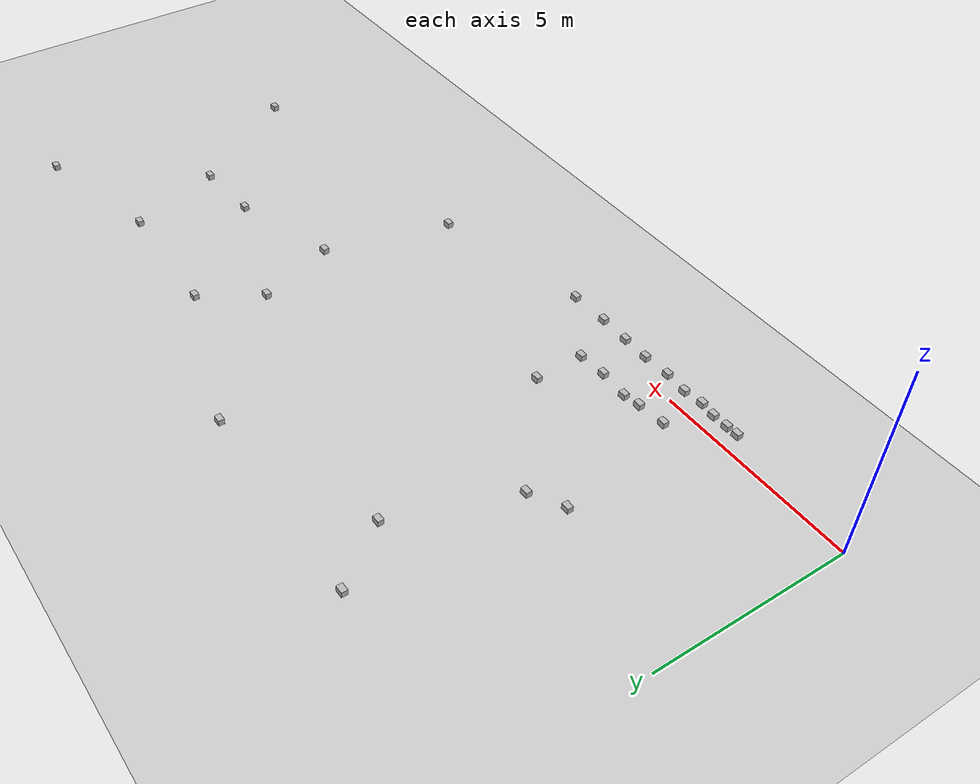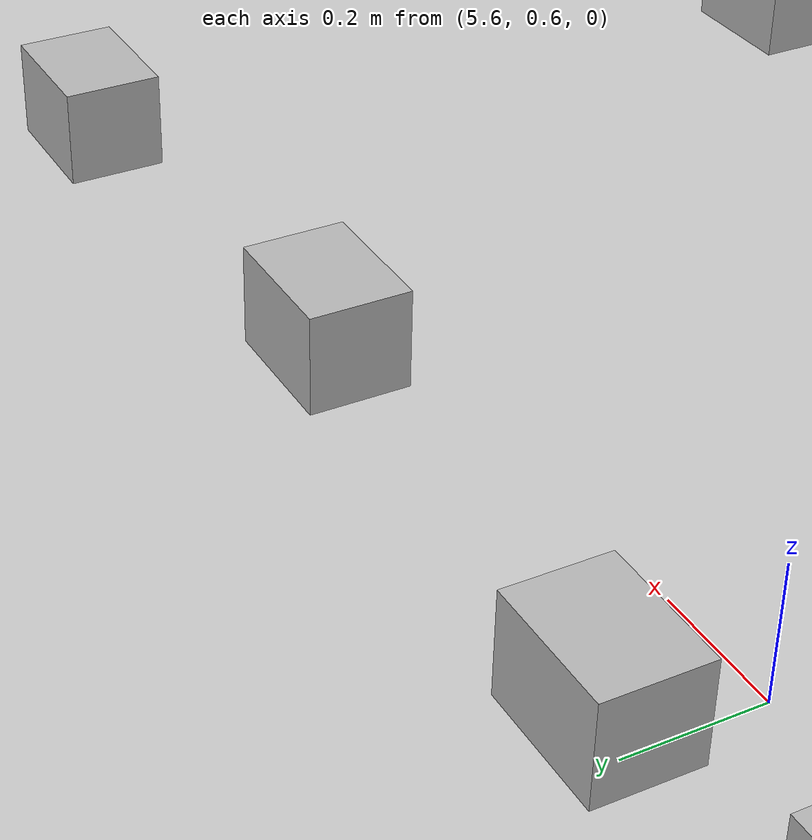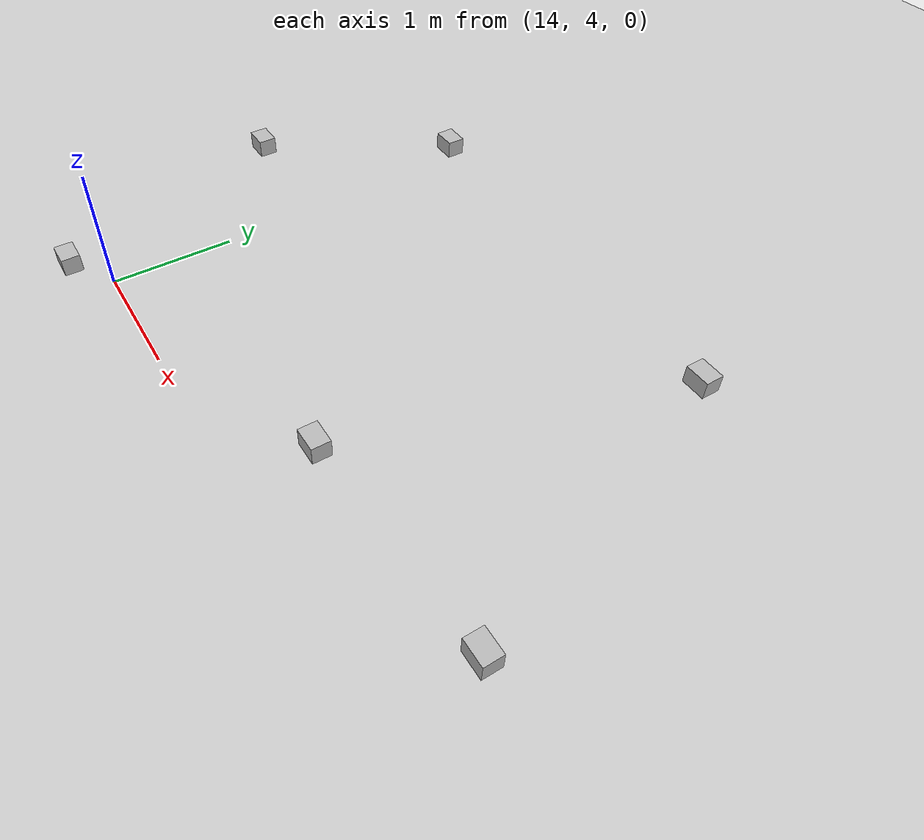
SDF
<?xml version="1.0"?>
<sdf version="1.4">
  <world name="carollo_track_v2">
    <include>
      <uri>model://selfie_description/models/carollo_track_v2</uri>
      <name>track</name>
      <pose>12 5 0 0 0 0</pose>
    </include>
    <include>
      <uri>model://sun</uri>
      <pose>0 0 10 0 0 0</pose>
      <name>sun</name>
    </include>
    <include>
    	<uri>model://selfie_description/models/box</uri>
    	<pose> 3.4 -0.44 0.1 0 0 0</pose>
    	<name>box1</name>
    </include>
    <include>
    	<uri>model://selfie_description/models/box</uri>
    	<pose> 3.7 -0.43 0.1 0 0 0</pose>
    	<name>box2</name>
    </include>
    <include>
    	<uri>model://selfie_description/models/box</uri>
    	<pose> 4.1 -0.42 0.1 0 0 0</pose>
    	<name>box3</name>
    </include>
    <include>
    	<uri>model://selfie_description/models/box</uri>
    	<pose> 4.5 -0.47 0.1 0 0 0</pose>
    	<name>box4</name>
    </include>
    <include>
    	<uri>model://selfie_description/models/box</uri>
    	<pose> 5.0 -0.41 0.1 0 0 0</pose>
    	<name>box5</name>
    </include>
    <include>
    	<uri>model://selfie_description/models/box</uri>
    	<pose> 5.6 -0.46 0.1 0 0 0</pose>
    	<name>box6</name>
    </include>
    <include>
    	<uri>model://selfie_description/models/box</uri>
    	<pose> 6.3 -0.42 0.1 0 0 0</pose>
    	<name>box7</name>
    </include>
    <include>
    	<uri>model://selfie_description/models/box</uri>
    	<pose> 7.0 -0.43 0.1 0 0 0</pose>
    	<name>box8</name>
    </include>
    <include>
    	<uri>model://selfie_description/models/box</uri>
    	<pose> 7.8 -0.45 0.1 0 0 0</pose>
    	<name>box9</name>
    </include>

    <include>
    	<uri>model://selfie_description/models/box</uri>
    	<pose> 8.8 -0.42 0.1 0 0 0</pose>
    	<name>box10</name>

    </include>
    <include>
    	<uri>model://selfie_description/models/box</uri>
    	<pose> 7.12 0.8 0.1 0 0 0</pose>
    	<name>box11</name>
    </include>
    <include>
    	<uri>model://selfie_description/models/box</uri>
    	<pose> 6.40 0.75 0.1 0 0 0</pose>
    	<name>box12</name>
    </include>
    <include>
    	<uri>model://selfie_description/models/box</uri>
    	<pose> 5.63 0.81 0.1 0 0 0</pose>
    	<name>box13</name>
    </include>
    <include>
    	<uri>model://selfie_description/models/box</uri>
    	<pose> 5.22 0.73 0.1 0 0 0</pose>
    	<name>box14</name>
    </include>
    <include>
    	<uri>model://selfie_description/models/box</uri>
    	<pose> 4.52 0.66 0.1 0 0 0</pose>
    	<name>box15</name>
    </include>
    <include>
    	<uri>model://selfie_description/models/box</uri>
    	<pose> 7.1 2.1 0.1 0 0 0</pose>
    	<name>box16</name>
    </include>
    <include>
    	<uri>model://selfie_description/models/box</uri>
    	<pose> 3.8 3.9 0.1 0 0 0</pose>
    	<name>box17</name>
    </include>
    <include>
    	<uri>model://selfie_description/models/box</uri>
    	<pose> 4.58 4.35 0.1 0 0 0</pose>
    	<name>box18</name>
    </include>
    <include>
    	<uri>model://selfie_description/models/box</uri>
    	<pose> 5.6 7.3 0.1 0 0 0</pose>
    	<name>box19</name>
    </include>
    <include>
    	<uri>model://selfie_description/models/box</uri>
    	<pose> 4.54 8.8 0.1 0 0 0</pose>
    	<name>box20</name>
    </include>
    <include>
    	<uri>model://selfie_description/models/box</uri>
    	<pose> 9.8 8.71 0.1 0 0 0</pose>
    	<name>box21</name>
    </include>
    <include>
    	<uri>model://selfie_description/models/box</uri>
    	<pose> 12.85 0.5 0.1 0 0 0</pose>
    	<name>box22</name>
    </include>
    <include>
    	<uri>model://selfie_description/models/box</uri>
    	<pose> 13.66 3.76 0.1 0 0 0</pose>
    	<name>box23</name>
    </include>
    <include>
    	<uri>model://selfie_description/models/box</uri>
    	<pose> 12.93 5.82 0.1 0 0 0</pose>
    	<name>box24</name>
    </include>

    <include>
    	<uri>model://selfie_description/models/box</uri>
    	<pose> 13.84 7.31 0.1 0 0 0</pose>
    	<name>box25</name>

    </include>
    <include>
    	<uri>model://selfie_description/models/box</uri>
    	<pose> 16.35 4.6 0.1 0 0 0</pose>
    	<name>box26</name>
    </include>
    <include>
    	<uri>model://selfie_description/models/box</uri>
    	<pose> 18.12 4.72 0.1 0 0 0</pose>
    	<name>box27</name>
    </include>
    <include>
    	<uri>model://selfie_description/models/box</uri>
    	<pose> 17.25 7.2 0.1 0 0 0</pose>
    	<name>box28</name>
    </include>
    <include>
    	<uri>model://selfie_description/models/box</uri>
    	<pose> 20.2 1.56 0.1 0 0 0</pose>
    	<name>box29</name>
    </include>
    <include>
    	<uri>model://selfie_description/models/box</uri>
    	<pose> 20.81 8.07 0.1 0 0 0</pose>
    	<name>box30</name>
    </include>
  </world>
</sdf>

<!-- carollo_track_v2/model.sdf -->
<sdf version="1.4">
  <model name="basic_track_ground_plane">
    <static>true</static>
    <link name="track">
      <collision name="collision">
        <geometry>
          <plane>
            <normal> 0 0 1</normal>
            <size>30 30</size>
          </plane>
        </geometry>
        <surface>
          <friction>
            <ode>
              <mu>100</mu>
              <mu2>50</mu2>
            </ode>
          </friction>
         </surface>
      </collision>
      <visual name="visual">
        <cast_shadows>false</cast_shadows>
        <geometry>
          <plane>
            <normal>0 0 1</normal>
            <size>30.49 17.43</size>
          </plane>
        </geometry>
        <material>
          <script>
            <uri>model://selfie_description/models/carollo_track_v2/materials/scripts</uri>
            <uri>model://selfie_description/models/carollo_track_v2/materials/textures</uri>
            <name>basic_track/Image</name>
          </script>
        </material>
      </visual>
    </link>
  </model>
</sdf>

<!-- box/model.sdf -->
<sdf version="1.4">
<model name="box">
  <pose>0 0 0 0 0 0</pose>
  <static>true</static>
    <link name="link">
      <inertial>
        <mass>1.0</mass>
        <inertia> <!-- inertias are tricky to compute -->
          <!-- http://gazebosim.org/tutorials?tut=inertia&cat=build_robot -->
          <ixx>0.083</ixx>       <!-- for a box: ixx = 0.083 * mass * (y*y + z*z) -->
          <ixy>0.0</ixy>         <!-- for a box: ixy = 0 -->
          <ixz>0.0</ixz>         <!-- for a box: ixz = 0 -->
          <iyy>0.083</iyy>       <!-- for a box: iyy = 0.083 * mass * (x*x + z*z) -->
          <iyz>0.0</iyz>         <!-- for a box: iyz = 0 -->
          <izz>0.083</izz>       <!-- for a box: izz = 0.083 * mass * (x*x + y*y) -->
        </inertia>
      </inertial>
      <collision name="collision">
        <geometry>
          <box>
            <size>0.2 0.15 0.15</size>
          </box>
        </geometry>
      </collision>
      <visual name="visual">
        <material>
          <script>Gazebo/White</script>
        </material>
        <geometry>
          <box>
            <size>0.2 0.15 0.15</size>
          </box>
        </geometry>
      </visual>
    </link>
  </model>
</sdf>
